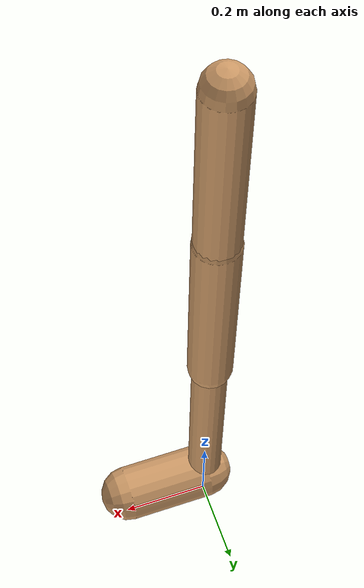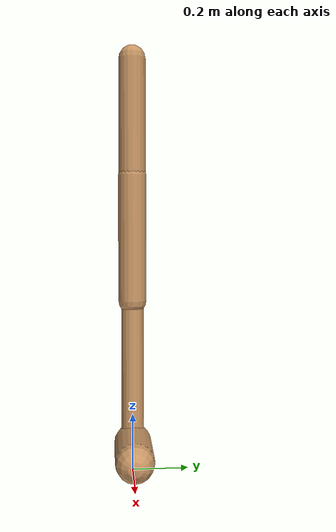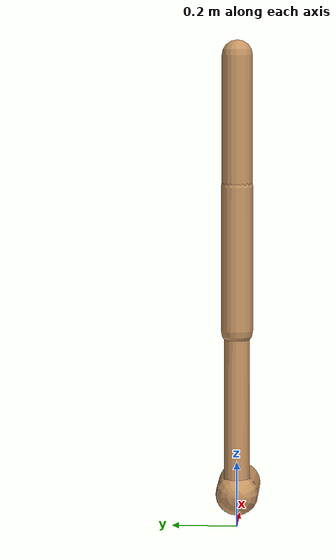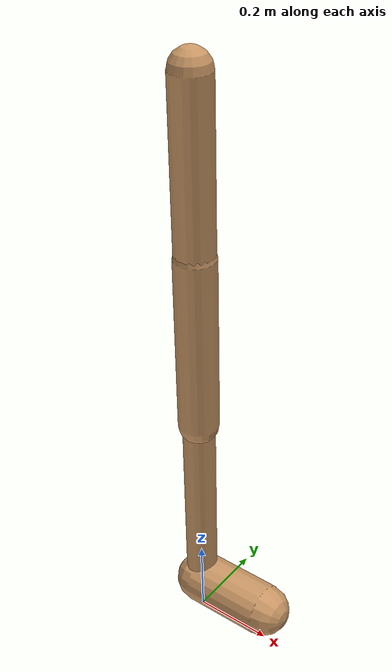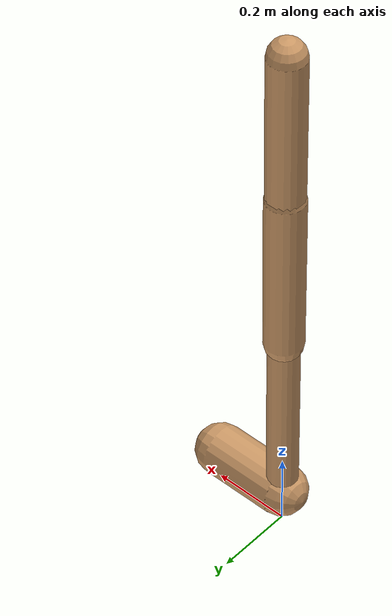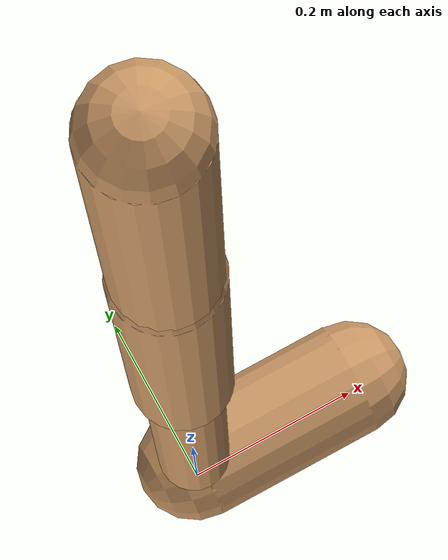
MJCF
<mujoco model="walker2d">
  <compiler angle="degree" coordinate="global" inertiafromgeom="true" />
  <default>
    <joint armature="0.01" damping=".1" limited="true" />
    <geom conaffinity="0" condim="3" contype="1" density="1000" friction="0.8 .1 .1" rgba="0.8 0.6 .4 1" />
  </default>
  <option integrator="RK4" timestep="0.002" />
  <worldbody>

    <body name="torso" pos="0 0 -0.020568015235802907">
      <joint armature="0" axis="1 0 0" damping="0" limited="false" name="ignorex" pos="0 0 0" stiffness="0" type="slide" />
      <joint armature="0" axis="0 0 1" damping="0" limited="false" name="ignorez" pos="0 0 0" ref="1.25" stiffness="0" type="slide" />
      <joint armature="0" axis="0 1 0" damping="0" limited="false" name="ignorey" pos="0 0 0" stiffness="0" type="hinge" />
      <geom fromto="0 0 1.45 0 0 1.05" name="torso_geom" size="0.04685052411996555" type="capsule" />
      <body name="thigh">
        <joint axis="0 -1 0" name="thigh_joint" pos="0 0 1.05" range="-150 0" type="hinge" />
        <geom fromto="0.0 0.0 1.05 0.0 0.0 0.6097427440590645" name="thigh_geom" size="0.0491039355565159" type="capsule" />
        <body name="leg" pos="0.0 0.0 0.009742744059064501">
          <joint axis="0 -1 0" name="leg_joint" pos="0 0 0.6" range="-150 0" type="hinge" />
          <geom fromto="0.0 0.0 0.6 0.0 0.0 0.11082527117673838" name="leg_geom" size="0.03928314844521272" type="capsule" />
          <body name="foot" pos="0.0 0.0 0.010825271176738371">
            <joint axis="0 -1 0" name="foot_joint" pos="0 0 0.1" range="-45 45" type="hinge" />
            <geom fromto="0.0 0.0 0.1 0.19645314342056208 0.0 0.1" name="foot_geom" size="0.06549918394175708" type="capsule" />
          </body>
        </body>
      </body>

      <body name="thigh_left">
        <joint axis="0 -1 0" name="thigh_left_joint" pos="0 0 1.05" range="-150 0" type="hinge" />
        <geom fromto="0.0 0.0 1.05 0.0 0.0 0.6097427440590645" name="thigh_left_geom" rgba=".7 .3 .6 1" size="0.0491039355565159" type="capsule" />
        <body name="leg_left" pos="0.0 0.0 0.009742744059064501">
          <joint axis="0 -1 0" name="leg_left_joint" pos="0 0 0.6" range="-150 0" type="hinge" />
          <geom fromto="0.0 0.0 0.6 0.0 0.0 0.11082527117673838" name="leg_left_geom" rgba=".7 .3 .6 1" size="0.03928314844521272" type="capsule" />
          <body name="foot_left" pos="0.0 0.0 0.010825271176738371">
            <joint axis="0 -1 0" name="foot_left_joint" pos="0 0 0.1" range="-45 45" type="hinge" />
            <geom fromto="0.0 0.0 0.1 0.19645314342056208 0.0 0.1" name="foot_left_geom" rgba=".7 .3 .6 1" size="0.06549918394175708" type="capsule" />
          </body>
        </body>
      </body>
    </body>
  </worldbody>
  <actuator>

    <motor ctrllimited="true" ctrlrange="-1.0 1.0" gear="100" joint="thigh_joint" />
    <motor ctrllimited="true" ctrlrange="-1.0 1.0" gear="100" joint="leg_joint" />
    <motor ctrllimited="true" ctrlrange="-1.0 1.0" gear="100" joint="foot_joint" />
    <motor ctrllimited="true" ctrlrange="-1.0 1.0" gear="100" joint="thigh_left_joint" />
    <motor ctrllimited="true" ctrlrange="-1.0 1.0" gear="100" joint="leg_left_joint" />
    <motor ctrllimited="true" ctrlrange="-1.0 1.0" gear="100" joint="foot_left_joint" />

  </actuator>
</mujoco>
